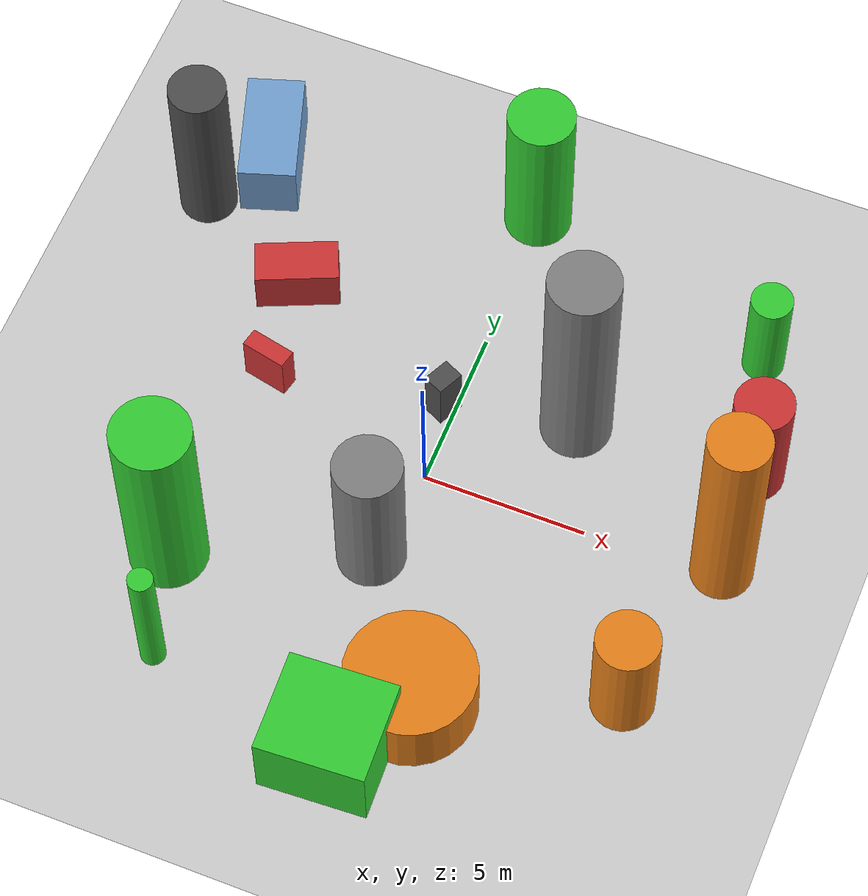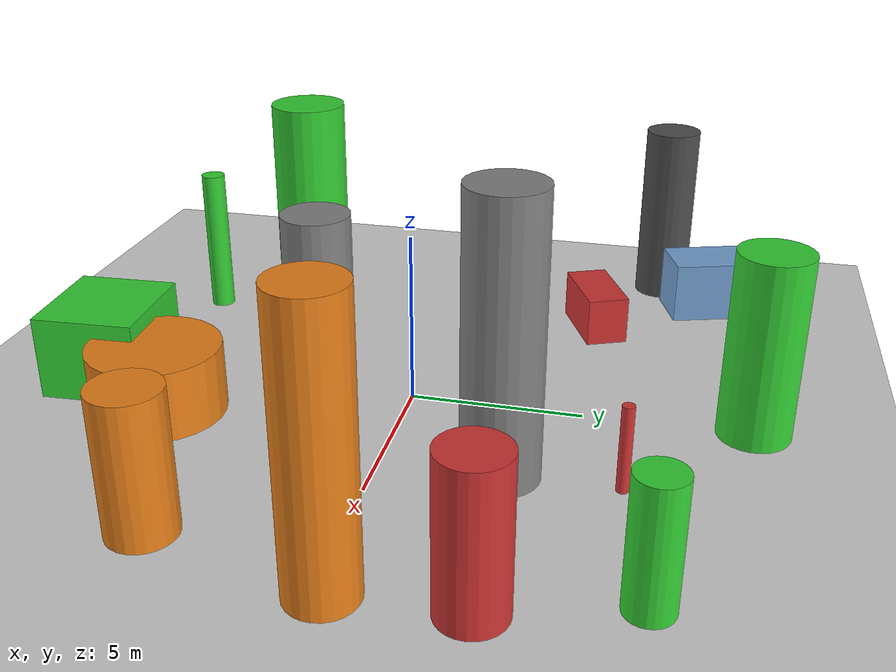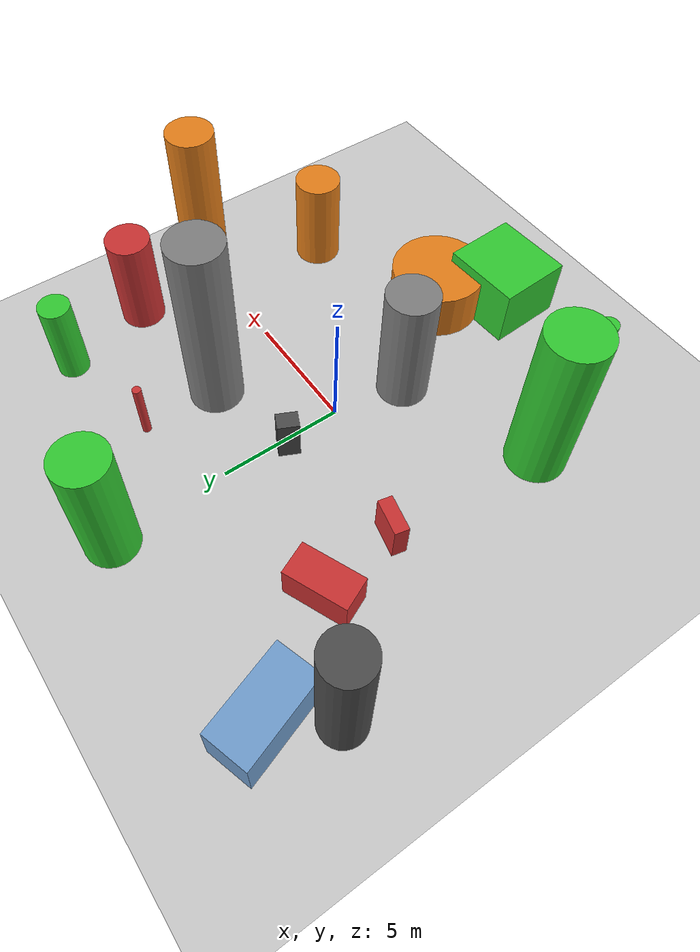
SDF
<?xml version='1.0'?>
<sdf version='1.6'>
  <world name='default'>
    <!-- Sun light -->
    <light name='sun' type='directional'>
      <cast_shadows>1</cast_shadows>
      <pose>0 0 10 0 0 0</pose>
      <diffuse>0.8 0.8 0.8 1</diffuse>
      <specular>0.2 0.2 0.2 1</specular>
      <attenuation>
        <range>1000</range>
        <constant>0.9</constant>
        <linear>0.01</linear>
        <quadratic>0.001</quadratic>
      </attenuation>
      <direction>-0.5 0.1 -0.9</direction>
    </light>

    <!-- Ground plane -->
    <model name='ground_plane'>
      <static>1</static>
      <link name='link'>
        <collision name='collision'>
          <geometry>
            <plane>
              <normal>0 0 1</normal>
              <size>100 100</size>
            </plane>
          </geometry>
          <surface>
            <contact>
              <collide_bitmask>65535</collide_bitmask>
              <ode/>
            </contact>
            <friction>
              <ode>
                <mu>100</mu>
                <mu2>50</mu2>
              </ode>
              <torsional><ode/></torsional>
            </friction>
            <bounce/>
          </surface>
          <max_contacts>10</max_contacts>
        </collision>
        <visual name='visual'>
          <cast_shadows>0</cast_shadows>
          <geometry>
            <plane>
              <normal>0 0 1</normal>
              <size>100 100</size>
            </plane>
          </geometry>
          <material>
            <script>
              <uri>file://media/materials/scripts/gazebo.material</uri>
              <n>Gazebo/Grey</n>
            </script>
          </material>
        </visual>
      </link>
    </model>

    <!-- Environment -->
    <magnetic_field>6e-06 2.3e-05 -4.2e-05</magnetic_field>
    <atmosphere type='adiabatic'/>
    <physics name='default_physics' default='0' type='ode'>
      <gravity>0 0 -9.8</gravity>
      <max_step_size>0.004</max_step_size>
      <real_time_factor>1</real_time_factor>
      <real_time_update_rate>250</real_time_update_rate>
    </physics>
    <scene>
      <ambient>0.4 0.4 0.4 1</ambient>
      <background>0.7 0.7 0.7 1</background>
      <shadows>1</shadows>
    </scene>
    <wind/>
    <spherical_coordinates>
      <surface_model>EARTH_WGS84</surface_model>
      <latitude_deg>0</latitude_deg>
      <longitude_deg>0</longitude_deg>
      <elevation>0</elevation>
      <heading_deg>0</heading_deg>
    </spherical_coordinates>

    <!-- ============ OBSTACLES (17) ============ -->
    <model name='obs_00'>
      <static>1</static>
      <link name='link'>
        <visual name='visual'>
          <geometry>
            <cylinder>
              <radius>0.9329</radius>
              <length>7.5776</length>
            </cylinder>
          </geometry>
          <material>
            <script>
              <n>Gazebo/Orange</n>
              <uri>file://media/materials/scripts/gazebo.material</uri>
            </script>
            <ambient>0.9 0.5 0.1 1</ambient>
          </material>
        </visual>
        <collision name='collision'>
          <geometry>
            <cylinder>
              <radius>0.9329</radius>
              <length>7.5776</length>
            </cylinder>
          </geometry>
          <max_contacts>10</max_contacts>
          <surface>
            <contact><ode/></contact>
            <bounce/>
            <friction>
              <ode><mu>1</mu><mu2>1</mu2></ode>
              <torsional><ode/></torsional>
            </friction>
          </surface>
        </collision>
      </link>
      <pose>9.1089 0.3301 3.7888 0 0 1.6516</pose>
    </model>

    <model name='obs_01'>
      <static>1</static>
      <link name='link'>
        <visual name='visual'>
          <geometry>
            <cylinder>
              <radius>0.8784</radius>
              <length>5.8044</length>
            </cylinder>
          </geometry>
          <material>
            <script>
              <n>Gazebo/DarkGrey</n>
              <uri>file://media/materials/scripts/gazebo.material</uri>
            </script>
            <ambient>0.3 0.3 0.3 1</ambient>
          </material>
        </visual>
        <collision name='collision'>
          <geometry>
            <cylinder>
              <radius>0.8784</radius>
              <length>5.8044</length>
            </cylinder>
          </geometry>
          <max_contacts>10</max_contacts>
          <surface>
            <contact><ode/></contact>
            <bounce/>
            <friction>
              <ode><mu>1</mu><mu2>1</mu2></ode>
              <torsional><ode/></torsional>
            </friction>
          </surface>
        </collision>
      </link>
      <pose>-9.8055 6.6435 2.9022 0 0 1.5786</pose>
    </model>

    <model name='obs_02'>
      <static>1</static>
      <link name='link'>
        <visual name='visual'>
          <geometry>
            <cylinder>
              <radius>0.3727</radius>
              <length>4.6274</length>
            </cylinder>
          </geometry>
          <material>
            <script>
              <n>Gazebo/Green</n>
              <uri>file://media/materials/scripts/gazebo.material</uri>
            </script>
            <ambient>0.2 0.8 0.2 1</ambient>
          </material>
        </visual>
        <collision name='collision'>
          <geometry>
            <cylinder>
              <radius>0.3727</radius>
              <length>4.6274</length>
            </cylinder>
          </geometry>
          <max_contacts>10</max_contacts>
          <surface>
            <contact><ode/></contact>
            <bounce/>
            <friction>
              <ode><mu>1</mu><mu2>1</mu2></ode>
              <torsional><ode/></torsional>
            </friction>
          </surface>
        </collision>
      </link>
      <pose>-5.0348 -8.1398 2.3137 0 0 1.4363</pose>
    </model>

    <model name='obs_03'>
      <static>1</static>
      <link name='link'>
        <visual name='visual'>
          <geometry>
            <cylinder>
              <radius>0.1719</radius>
              <length>2.4753</length>
            </cylinder>
          </geometry>
          <material>
            <script>
              <n>Gazebo/Red</n>
              <uri>file://media/materials/scripts/gazebo.material</uri>
            </script>
            <ambient>0.8 0.2 0.2 1</ambient>
          </material>
        </visual>
        <collision name='collision'>
          <geometry>
            <cylinder>
              <radius>0.1719</radius>
              <length>2.4753</length>
            </cylinder>
          </geometry>
          <max_contacts>10</max_contacts>
          <surface>
            <contact><ode/></contact>
            <bounce/>
            <friction>
              <ode><mu>1</mu><mu2>1</mu2></ode>
              <torsional><ode/></torsional>
            </friction>
          </surface>
        </collision>
      </link>
      <pose>3.4740 6.4215 1.2376 0 0 2.1652</pose>
    </model>

    <model name='obs_04'>
      <static>1</static>
      <link name='link'>
        <visual name='visual'>
          <geometry>
            <box>
              <size>1.7656 3.5164 1.9358</size>
            </box>
          </geometry>
          <material>
            <script>
              <n>Gazebo/Blue</n>
              <uri>file://media/materials/scripts/gazebo.material</uri>
            </script>
            <ambient>0.447 0.624 0.812 1</ambient>
          </material>
        </visual>
        <collision name='collision'>
          <geometry>
            <box>
              <size>1.7656 3.5164 1.9358</size>
            </box>
          </geometry>
          <max_contacts>10</max_contacts>
          <surface>
            <contact><ode/></contact>
            <bounce/>
            <friction>
              <ode><mu>1</mu><mu2>1</mu2></ode>
              <torsional><ode/></torsional>
            </friction>
          </surface>
        </collision>
      </link>
      <pose>-8.4794 8.6279 0.9679 0 0 0.3165</pose>
    </model>

    <model name='obs_05'>
      <static>1</static>
      <link name='link'>
        <visual name='visual'>
          <geometry>
            <cylinder>
              <radius>1.0220</radius>
              <length>5.2916</length>
            </cylinder>
          </geometry>
          <material>
            <script>
              <n>Gazebo/Grey</n>
              <uri>file://media/materials/scripts/gazebo.material</uri>
            </script>
            <ambient>0.5 0.5 0.5 1</ambient>
          </material>
        </visual>
        <collision name='collision'>
          <geometry>
            <cylinder>
              <radius>1.0220</radius>
              <length>5.2916</length>
            </cylinder>
          </geometry>
          <max_contacts>10</max_contacts>
          <surface>
            <contact><ode/></contact>
            <bounce/>
            <friction>
              <ode><mu>1</mu><mu2>1</mu2></ode>
              <torsional><ode/></torsional>
            </friction>
          </surface>
        </collision>
      </link>
      <pose>-0.4689 -2.9292 2.6458 0 0 0.7450</pose>
    </model>

    <model name='obs_06'>
      <static>1</static>
      <link name='link'>
        <visual name='visual'>
          <geometry>
            <cylinder>
              <radius>0.9343</radius>
              <length>3.9337</length>
            </cylinder>
          </geometry>
          <material>
            <script>
              <n>Gazebo/Orange</n>
              <uri>file://media/materials/scripts/gazebo.material</uri>
            </script>
            <ambient>0.9 0.5 0.1 1</ambient>
          </material>
        </visual>
        <collision name='collision'>
          <geometry>
            <cylinder>
              <radius>0.9343</radius>
              <length>3.9337</length>
            </cylinder>
          </geometry>
          <max_contacts>10</max_contacts>
          <surface>
            <contact><ode/></contact>
            <bounce/>
            <friction>
              <ode><mu>1</mu><mu2>1</mu2></ode>
              <torsional><ode/></torsional>
            </friction>
          </surface>
        </collision>
      </link>
      <pose>7.8863 -4.6185 1.9668 0 0 0.5778</pose>
    </model>

    <model name='obs_07'>
      <static>1</static>
      <link name='link'>
        <visual name='visual'>
          <geometry>
            <cylinder>
              <radius>0.8911</radius>
              <length>4.1551</length>
            </cylinder>
          </geometry>
          <material>
            <script>
              <n>Gazebo/Red</n>
              <uri>file://media/materials/scripts/gazebo.material</uri>
            </script>
            <ambient>0.8 0.2 0.2 1</ambient>
          </material>
        </visual>
        <collision name='collision'>
          <geometry>
            <cylinder>
              <radius>0.8911</radius>
              <length>4.1551</length>
            </cylinder>
          </geometry>
          <max_contacts>10</max_contacts>
          <surface>
            <contact><ode/></contact>
            <bounce/>
            <friction>
              <ode><mu>1</mu><mu2>1</mu2></ode>
              <torsional><ode/></torsional>
            </friction>
          </surface>
        </collision>
      </link>
      <pose>8.9424 3.6621 2.0776 0 0 1.1469</pose>
    </model>

    <model name='obs_08'>
      <static>1</static>
      <link name='link'>
        <visual name='visual'>
          <geometry>
            <box>
              <size>2.5156 1.3000 1.4993</size>
            </box>
          </geometry>
          <material>
            <script>
              <n>Gazebo/Red</n>
              <uri>file://media/materials/scripts/gazebo.material</uri>
            </script>
            <ambient>0.8 0.2 0.2 1</ambient>
          </material>
        </visual>
        <collision name='collision'>
          <geometry>
            <box>
              <size>2.5156 1.3000 1.4993</size>
            </box>
          </geometry>
          <max_contacts>10</max_contacts>
          <surface>
            <contact><ode/></contact>
            <bounce/>
            <friction>
              <ode><mu>1</mu><mu2>1</mu2></ode>
              <torsional><ode/></torsional>
            </friction>
          </surface>
        </collision>
      </link>
      <pose>-6.0067 4.7086 0.7497 0 0 0.4120</pose>
    </model>

    <model name='obs_09'>
      <static>1</static>
      <link name='link'>
        <visual name='visual'>
          <geometry>
            <cylinder>
              <radius>1.1774</radius>
              <length>6.9942</length>
            </cylinder>
          </geometry>
          <material>
            <script>
              <n>Gazebo/Green</n>
              <uri>file://media/materials/scripts/gazebo.material</uri>
            </script>
            <ambient>0.2 0.8 0.2 1</ambient>
          </material>
        </visual>
        <collision name='collision'>
          <geometry>
            <cylinder>
              <radius>1.1774</radius>
              <length>6.9942</length>
            </cylinder>
          </geometry>
          <max_contacts>10</max_contacts>
          <surface>
            <contact><ode/></contact>
            <bounce/>
            <friction>
              <ode><mu>1</mu><mu2>1</mu2></ode>
              <torsional><ode/></torsional>
            </friction>
          </surface>
        </collision>
      </link>
      <pose>-5.9447 -5.0061 3.4971 0 0 2.5261</pose>
    </model>

    <model name='obs_10'>
      <static>1</static>
      <link name='link'>
        <visual name='visual'>
          <geometry>
            <cylinder>
              <radius>1.9244</radius>
              <length>2.0468</length>
            </cylinder>
          </geometry>
          <material>
            <script>
              <n>Gazebo/Orange</n>
              <uri>file://media/materials/scripts/gazebo.material</uri>
            </script>
            <ambient>0.9 0.5 0.1 1</ambient>
          </material>
        </visual>
        <collision name='collision'>
          <geometry>
            <cylinder>
              <radius>1.9244</radius>
              <length>2.0468</length>
            </cylinder>
          </geometry>
          <max_contacts>10</max_contacts>
          <surface>
            <contact><ode/></contact>
            <bounce/>
            <friction>
              <ode><mu>1</mu><mu2>1</mu2></ode>
              <torsional><ode/></torsional>
            </friction>
          </surface>
        </collision>
      </link>
      <pose>2.3719 -6.8801 1.0234 0 0 0.4582</pose>
    </model>

    <model name='obs_11'>
      <static>1</static>
      <link name='link'>
        <visual name='visual'>
          <geometry>
            <cylinder>
              <radius>1.0743</radius>
              <length>7.9689</length>
            </cylinder>
          </geometry>
          <material>
            <script>
              <n>Gazebo/Grey</n>
              <uri>file://media/materials/scripts/gazebo.material</uri>
            </script>
            <ambient>0.5 0.5 0.5 1</ambient>
          </material>
        </visual>
        <collision name='collision'>
          <geometry>
            <cylinder>
              <radius>1.0743</radius>
              <length>7.9689</length>
            </cylinder>
          </geometry>
          <max_contacts>10</max_contacts>
          <surface>
            <contact><ode/></contact>
            <bounce/>
            <friction>
              <ode><mu>1</mu><mu2>1</mu2></ode>
              <torsional><ode/></torsional>
            </friction>
          </surface>
        </collision>
      </link>
      <pose>3.5162 3.2685 3.9845 0 0 0.5548</pose>
    </model>

    <model name='obs_12'>
      <static>1</static>
      <link name='link'>
        <visual name='visual'>
          <geometry>
            <box>
              <size>3.0220 3.2487 2.5002</size>
            </box>
          </geometry>
          <material>
            <script>
              <n>Gazebo/Green</n>
              <uri>file://media/materials/scripts/gazebo.material</uri>
            </script>
            <ambient>0.2 0.8 0.2 1</ambient>
          </material>
        </visual>
        <collision name='collision'>
          <geometry>
            <box>
              <size>3.0220 3.2487 2.5002</size>
            </box>
          </geometry>
          <max_contacts>10</max_contacts>
          <surface>
            <contact><ode/></contact>
            <bounce/>
            <friction>
              <ode><mu>1</mu><mu2>1</mu2></ode>
              <torsional><ode/></torsional>
            </friction>
          </surface>
        </collision>
      </link>
      <pose>0.8295 -9.1547 1.2501 0 0 1.6242</pose>
    </model>

    <model name='obs_13'>
      <static>1</static>
      <link name='link'>
        <visual name='visual'>
          <geometry>
            <box>
              <size>0.6670 0.8464 1.8167</size>
            </box>
          </geometry>
          <material>
            <script>
              <n>Gazebo/DarkGrey</n>
              <uri>file://media/materials/scripts/gazebo.material</uri>
            </script>
            <ambient>0.3 0.3 0.3 1</ambient>
          </material>
        </visual>
        <collision name='collision'>
          <geometry>
            <box>
              <size>0.6670 0.8464 1.8167</size>
            </box>
          </geometry>
          <max_contacts>10</max_contacts>
          <surface>
            <contact><ode/></contact>
            <bounce/>
            <friction>
              <ode><mu>1</mu><mu2>1</mu2></ode>
              <torsional><ode/></torsional>
            </friction>
          </surface>
        </collision>
      </link>
      <pose>-0.3542 2.4133 0.9084 0 0 2.6971</pose>
    </model>

    <model name='obs_14'>
      <static>1</static>
      <link name='link'>
        <visual name='visual'>
          <geometry>
            <cylinder>
              <radius>1.0316</radius>
              <length>5.4090</length>
            </cylinder>
          </geometry>
          <material>
            <script>
              <n>Gazebo/Green</n>
              <uri>file://media/materials/scripts/gazebo.material</uri>
            </script>
            <ambient>0.2 0.8 0.2 1</ambient>
          </material>
        </visual>
        <collision name='collision'>
          <geometry>
            <cylinder>
              <radius>1.0316</radius>
              <length>5.4090</length>
            </cylinder>
          </geometry>
          <max_contacts>10</max_contacts>
          <surface>
            <contact><ode/></contact>
            <bounce/>
            <friction>
              <ode><mu>1</mu><mu2>1</mu2></ode>
              <torsional><ode/></torsional>
            </friction>
          </surface>
        </collision>
      </link>
      <pose>-0.1532 9.7072 2.7045 0 0 2.5567</pose>
    </model>

    <model name='obs_15'>
      <static>1</static>
      <link name='link'>
        <visual name='visual'>
          <geometry>
            <cylinder>
              <radius>0.6306</radius>
              <length>3.5221</length>
            </cylinder>
          </geometry>
          <material>
            <script>
              <n>Gazebo/Green</n>
              <uri>file://media/materials/scripts/gazebo.material</uri>
            </script>
            <ambient>0.2 0.8 0.2 1</ambient>
          </material>
        </visual>
        <collision name='collision'>
          <geometry>
            <cylinder>
              <radius>0.6306</radius>
              <length>3.5221</length>
            </cylinder>
          </geometry>
          <max_contacts>10</max_contacts>
          <surface>
            <contact><ode/></contact>
            <bounce/>
            <friction>
              <ode><mu>1</mu><mu2>1</mu2></ode>
              <torsional><ode/></torsional>
            </friction>
          </surface>
        </collision>
      </link>
      <pose>7.9400 7.3754 1.7611 0 0 2.3392</pose>
    </model>

    <model name='obs_16'>
      <static>1</static>
      <link name='link'>
        <visual name='visual'>
          <geometry>
            <box>
              <size>1.4020 0.5694 1.6062</size>
            </box>
          </geometry>
          <material>
            <script>
              <n>Gazebo/Red</n>
              <uri>file://media/materials/scripts/gazebo.material</uri>
            </script>
            <ambient>0.8 0.2 0.2 1</ambient>
          </material>
        </visual>
        <collision name='collision'>
          <geometry>
            <box>
              <size>1.4020 0.5694 1.6062</size>
            </box>
          </geometry>
          <max_contacts>10</max_contacts>
          <surface>
            <contact><ode/></contact>
            <bounce/>
            <friction>
              <ode><mu>1</mu><mu2>1</mu2></ode>
              <torsional><ode/></torsional>
            </friction>
          </surface>
        </collision>
      </link>
      <pose>-5.5581 1.5333 0.8031 0 0 2.9275</pose>
    </model>

    <!-- GUI camera -->
    <gui fullscreen='0'>
      <camera name='user_camera'>
        <pose>-15 0 18 0 0.85 0.15</pose>
        <view_controller>orbit</view_controller>
        <projection_type>perspective</projection_type>
      </camera>
    </gui>
  </world>
</sdf>
